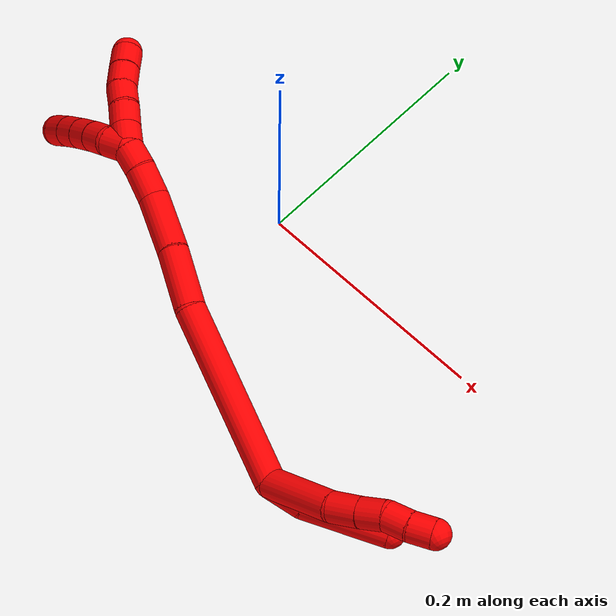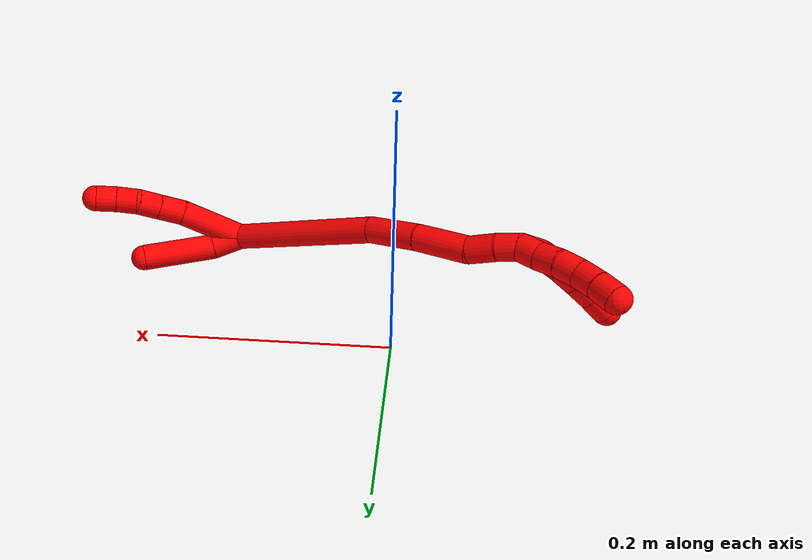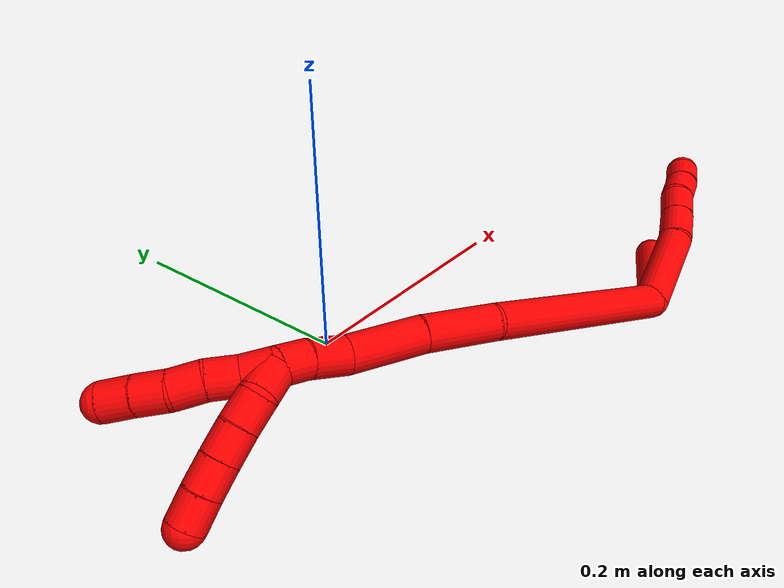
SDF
<sdf version="1.7">
 <world name="default">
  <model name="2">
   <static>0</static>
   <link name="2">
    <collision name="collision-cylinder-e_1_2_8">
     <pose>0.007558 0.021174 0.021791 -0.771047 0.243807 -0.099356</pose>
     <geometry><cylinder><radius>0.0125</radius><length>0.062621</length></cylinder></geometry>
     <surface>
      <friction><ode><mu>1.16</mu><mu2>1.16</mu2><slip1>0</slip1><slip2>0</slip2></ode></friction>
      <contact><ode><kp>1e+06</kp><kd>1</kd><max_vel>0</max_vel><min_depth>0.001</min_depth></ode></contact>
     </surface>
    </collision>
    <visual name="visual-cylinder-e_1_2_8">
     <pose>0.007558 0.021174 0.021791 -0.771047 0.243807 -0.099356</pose>
     <geometry><cylinder><radius>0.0125</radius><length>0.062621</length></cylinder></geometry>
     <material><ambient>1 0 0 1</ambient></material>
    </visual>
    <collision name="collision-cylinder-e_2_8_9">
     <pose>0.020977 0.050317 0.05139 -0.795541 0.483701 -0.206555</pose>
     <geometry><cylinder><radius>0.0125</radius><length>0.025202</length></cylinder></geometry>
     <surface>
      <friction><ode><mu>1.16</mu><mu2>1.16</mu2><slip1>0</slip1><slip2>0</slip2></ode></friction>
      <contact><ode><kp>1e+06</kp><kd>1</kd><max_vel>0</max_vel><min_depth>0.001</min_depth></ode></contact>
     </surface>
    </collision>
    <visual name="visual-cylinder-e_2_8_9">
     <pose>0.020977 0.050317 0.05139 -0.795541 0.483701 -0.206555</pose>
     <geometry><cylinder><radius>0.0125</radius><length>0.025202</length></cylinder></geometry>
     <material><ambient>1 0 0 1</ambient></material>
    </visual>
    <collision name="collision-cylinder-e_3_9_10">
     <pose>0.032195 0.065336 0.065423 -0.847519 0.51781 -0.237814</pose>
     <geometry><cylinder><radius>0.0125</radius><length>0.021651</length></cylinder></geometry>
     <surface>
      <friction><ode><mu>1.16</mu><mu2>1.16</mu2><slip1>0</slip1><slip2>0</slip2></ode></friction>
      <contact><ode><kp>1e+06</kp><kd>1</kd><max_vel>0</max_vel><min_depth>0.001</min_depth></ode></contact>
     </surface>
    </collision>
    <visual name="visual-cylinder-e_3_9_10">
     <pose>0.032195 0.065336 0.065423 -0.847519 0.51781 -0.237814</pose>
     <geometry><cylinder><radius>0.0125</radius><length>0.021651</length></cylinder></geometry>
     <material><ambient>1 0 0 1</ambient></material>
    </visual>
    <collision name="collision-cylinder-e_4_10_11">
     <pose>0.041832 0.077159 0.079662 -0.53716 0.430055 -0.120078</pose>
     <geometry><cylinder><radius>0.0125</radius><length>0.020522</length></cylinder></geometry>
     <surface>
      <friction><ode><mu>1.16</mu><mu2>1.16</mu2><slip1>0</slip1><slip2>0</slip2></ode></friction>
      <contact><ode><kp>1e+06</kp><kd>1</kd><max_vel>0</max_vel><min_depth>0.001</min_depth></ode></contact>
     </surface>
    </collision>
    <visual name="visual-cylinder-e_4_10_11">
     <pose>0.041832 0.077159 0.079662 -0.53716 0.430055 -0.120078</pose>
     <geometry><cylinder><radius>0.0125</radius><length>0.020522</length></cylinder></geometry>
     <material><ambient>1 0 0 1</ambient></material>
    </visual>
    <collision name="collision-cylinder-e_5_11_6">
     <pose>0.051533 0.086536 0.094706 -0.579741 0.573081 -0.175321</pose>
     <geometry><cylinder><radius>0.0125</radius><length>0.020004</length></cylinder></geometry>
     <surface>
      <friction><ode><mu>1.16</mu><mu2>1.16</mu2><slip1>0</slip1><slip2>0</slip2></ode></friction>
      <contact><ode><kp>1e+06</kp><kd>1</kd><max_vel>0</max_vel><min_depth>0.001</min_depth></ode></contact>
     </surface>
    </collision>
    <visual name="visual-cylinder-e_5_11_6">
     <pose>0.051533 0.086536 0.094706 -0.579741 0.573081 -0.175321</pose>
     <geometry><cylinder><radius>0.0125</radius><length>0.020004</length></cylinder></geometry>
     <material><ambient>1 0 0 1</ambient></material>
    </visual>
    <collision name="collision-cylinder-e_1_2_12">
     <pose>0.008461 0.000301 0.012278 -0.024529 0.603243 -0.007632</pose>
     <geometry><cylinder><radius>0.0125</radius><length>0.029827</length></cylinder></geometry>
     <surface>
      <friction><ode><mu>1.16</mu><mu2>1.16</mu2><slip1>0</slip1><slip2>0</slip2></ode></friction>
      <contact><ode><kp>1e+06</kp><kd>1</kd><max_vel>0</max_vel><min_depth>0.001</min_depth></ode></contact>
     </surface>
    </collision>
    <visual name="visual-cylinder-e_1_2_12">
     <pose>0.008461 0.000301 0.012278 -0.024529 0.603243 -0.007632</pose>
     <geometry><cylinder><radius>0.0125</radius><length>0.029827</length></cylinder></geometry>
     <material><ambient>1 0 0 1</ambient></material>
    </visual>
    <collision name="collision-cylinder-e_2_12_5">
     <pose>0.03924 0.011013 0.049547 -0.394713 0.689427 -0.143344</pose>
     <geometry><cylinder><radius>0.0125</radius><length>0.070173</length></cylinder></geometry>
     <surface>
      <friction><ode><mu>1.16</mu><mu2>1.16</mu2><slip1>0</slip1><slip2>0</slip2></ode></friction>
      <contact><ode><kp>1e+06</kp><kd>1</kd><max_vel>0</max_vel><min_depth>0.001</min_depth></ode></contact>
     </surface>
    </collision>
    <visual name="visual-cylinder-e_2_12_5">
     <pose>0.03924 0.011013 0.049547 -0.394713 0.689427 -0.143344</pose>
     <geometry><cylinder><radius>0.0125</radius><length>0.070173</length></cylinder></geometry>
     <material><ambient>1 0 0 1</ambient></material>
    </visual>
    <collision name="collision-cylinder-e_1_2_13">
     <pose>0.002301 0.00079 -0.075456 -3.13112 0.030481 -2.47958</pose>
     <geometry><cylinder><radius>0.0125</radius><length>0.150991</length></cylinder></geometry>
     <surface>
      <friction><ode><mu>1.16</mu><mu2>1.16</mu2><slip1>0</slip1><slip2>0</slip2></ode></friction>
      <contact><ode><kp>1e+06</kp><kd>1</kd><max_vel>0</max_vel><min_depth>0.001</min_depth></ode></contact>
     </surface>
    </collision>
    <visual name="visual-cylinder-e_1_2_13">
     <pose>0.002301 0.00079 -0.075456 -3.13112 0.030481 -2.47958</pose>
     <geometry><cylinder><radius>0.0125</radius><length>0.150991</length></cylinder></geometry>
     <material><ambient>1 0 0 1</ambient></material>
    </visual>
    <collision name="collision-cylinder-e_2_13_14">
     <pose>0.010263 -0.000436 -0.175701 3.06041 0.223811 2.44795</pose>
     <geometry><cylinder><radius>0.0125</radius><length>0.051014</length></cylinder></geometry>
     <surface>
      <friction><ode><mu>1.16</mu><mu2>1.16</mu2><slip1>0</slip1><slip2>0</slip2></ode></friction>
      <contact><ode><kp>1e+06</kp><kd>1</kd><max_vel>0</max_vel><min_depth>0.001</min_depth></ode></contact>
     </surface>
    </collision>
    <visual name="visual-cylinder-e_2_13_14">
     <pose>0.010263 -0.000436 -0.175701 3.06041 0.223811 2.44795</pose>
     <geometry><cylinder><radius>0.0125</radius><length>0.051014</length></cylinder></geometry>
     <material><ambient>1 0 0 1</ambient></material>
    </visual>
    <collision name="collision-cylinder-e_3_14_15">
     <pose>0.021295 -0.006909 -0.225138 2.96273 0.211244 1.73748</pose>
     <geometry><cylinder><radius>0.0125</radius><length>0.051234</length></cylinder></geometry>
     <surface>
      <friction><ode><mu>1.16</mu><mu2>1.16</mu2><slip1>0</slip1><slip2>0</slip2></ode></friction>
      <contact><ode><kp>1e+06</kp><kd>1</kd><max_vel>0</max_vel><min_depth>0.001</min_depth></ode></contact>
     </surface>
    </collision>
    <visual name="visual-cylinder-e_3_14_15">
     <pose>0.021295 -0.006909 -0.225138 2.96273 0.211244 1.73748</pose>
     <geometry><cylinder><radius>0.0125</radius><length>0.051234</length></cylinder></geometry>
     <material><ambient>1 0 0 1</ambient></material>
    </visual>
    <collision name="collision-cylinder-e_4_15_16">
     <pose>0.026704 -0.010614 -0.262993 -3.08475 0.002803 -0.098529</pose>
     <geometry><cylinder><radius>0.0125</radius><length>0.026457</length></cylinder></geometry>
     <surface>
      <friction><ode><mu>1.16</mu><mu2>1.16</mu2><slip1>0</slip1><slip2>0</slip2></ode></friction>
      <contact><ode><kp>1e+06</kp><kd>1</kd><max_vel>0</max_vel><min_depth>0.001</min_depth></ode></contact>
     </surface>
    </collision>
    <visual name="visual-cylinder-e_4_15_16">
     <pose>0.026704 -0.010614 -0.262993 -3.08475 0.002803 -0.098529</pose>
     <geometry><cylinder><radius>0.0125</radius><length>0.026457</length></cylinder></geometry>
     <material><ambient>1 0 0 1</ambient></material>
    </visual>
    <collision name="collision-cylinder-e_5_16_1">
     <pose>0.026444 -0.010584 -0.286322 3.07043 -0.029247 -0.779589</pose>
     <geometry><cylinder><radius>0.0125</radius><length>0.020304</length></cylinder></geometry>
     <surface>
      <friction><ode><mu>1.16</mu><mu2>1.16</mu2><slip1>0</slip1><slip2>0</slip2></ode></friction>
      <contact><ode><kp>1e+06</kp><kd>1</kd><max_vel>0</max_vel><min_depth>0.001</min_depth></ode></contact>
     </surface>
    </collision>
    <visual name="visual-cylinder-e_5_16_1">
     <pose>0.026444 -0.010584 -0.286322 3.07043 -0.029247 -0.779589</pose>
     <geometry><cylinder><radius>0.0125</radius><length>0.020304</length></cylinder></geometry>
     <material><ambient>1 0 0 1</ambient></material>
    </visual>
    <collision name="collision-cylinder-e_1_1_17">
     <pose>0.030345 -0.013589 -0.305228 2.88722 0.433276 2.08891</pose>
     <geometry><cylinder><radius>0.0125</radius><length>0.02</length></cylinder></geometry>
     <surface>
      <friction><ode><mu>1.16</mu><mu2>1.16</mu2><slip1>0</slip1><slip2>0</slip2></ode></friction>
      <contact><ode><kp>1e+06</kp><kd>1</kd><max_vel>0</max_vel><min_depth>0.001</min_depth></ode></contact>
     </surface>
    </collision>
    <visual name="visual-cylinder-e_1_1_17">
     <pose>0.030345 -0.013589 -0.305228 2.88722 0.433276 2.08891</pose>
     <geometry><cylinder><radius>0.0125</radius><length>0.02</length></cylinder></geometry>
     <material><ambient>1 0 0 1</ambient></material>
    </visual>
    <collision name="collision-cylinder-e_2_17_18">
     <pose>0.038774 -0.016838 -0.323022 3.03489 0.436778 2.66932</pose>
     <geometry><cylinder><radius>0.0125</radius><length>0.02</length></cylinder></geometry>
     <surface>
      <friction><ode><mu>1.16</mu><mu2>1.16</mu2><slip1>0</slip1><slip2>0</slip2></ode></friction>
      <contact><ode><kp>1e+06</kp><kd>1</kd><max_vel>0</max_vel><min_depth>0.001</min_depth></ode></contact>
     </surface>
    </collision>
    <visual name="visual-cylinder-e_2_17_18">
     <pose>0.038774 -0.016838 -0.323022 3.03489 0.436778 2.66932</pose>
     <geometry><cylinder><radius>0.0125</radius><length>0.02</length></cylinder></geometry>
     <material><ambient>1 0 0 1</ambient></material>
    </visual>
    <collision name="collision-cylinder-e_3_18_19">
     <pose>0.047204 -0.020445 -0.340714 2.84622 0.433369 1.953</pose>
     <geometry><cylinder><radius>0.0125</radius><length>0.02</length></cylinder></geometry>
     <surface>
      <friction><ode><mu>1.16</mu><mu2>1.16</mu2><slip1>0</slip1><slip2>0</slip2></ode></friction>
      <contact><ode><kp>1e+06</kp><kd>1</kd><max_vel>0</max_vel><min_depth>0.001</min_depth></ode></contact>
     </surface>
    </collision>
    <visual name="visual-cylinder-e_3_18_19">
     <pose>0.047204 -0.020445 -0.340714 2.84622 0.433369 1.953</pose>
     <geometry><cylinder><radius>0.0125</radius><length>0.02</length></cylinder></geometry>
     <material><ambient>1 0 0 1</ambient></material>
    </visual>
    <collision name="collision-cylinder-e_4_19_20">
     <pose>0.057251 -0.02489 -0.357305 2.9174 0.624617 2.47066</pose>
     <geometry><cylinder><radius>0.0125</radius><length>0.02</length></cylinder></geometry>
     <surface>
      <friction><ode><mu>1.16</mu><mu2>1.16</mu2><slip1>0</slip1><slip2>0</slip2></ode></friction>
      <contact><ode><kp>1e+06</kp><kd>1</kd><max_vel>0</max_vel><min_depth>0.001</min_depth></ode></contact>
     </surface>
    </collision>
    <visual name="visual-cylinder-e_4_19_20">
     <pose>0.057251 -0.02489 -0.357305 2.9174 0.624617 2.47066</pose>
     <geometry><cylinder><radius>0.0125</radius><length>0.02</length></cylinder></geometry>
     <material><ambient>1 0 0 1</ambient></material>
    </visual>
    <collision name="collision-cylinder-e_5_20_4">
     <pose>0.069188 -0.029013 -0.3728 2.84483 0.654768 2.3123</pose>
     <geometry><cylinder><radius>0.0125</radius><length>0.02</length></cylinder></geometry>
     <surface>
      <friction><ode><mu>1.16</mu><mu2>1.16</mu2><slip1>0</slip1><slip2>0</slip2></ode></friction>
      <contact><ode><kp>1e+06</kp><kd>1</kd><max_vel>0</max_vel><min_depth>0.001</min_depth></ode></contact>
     </surface>
    </collision>
    <visual name="visual-cylinder-e_5_20_4">
     <pose>0.069188 -0.029013 -0.3728 2.84483 0.654768 2.3123</pose>
     <geometry><cylinder><radius>0.0125</radius><length>0.02</length></cylinder></geometry>
     <material><ambient>1 0 0 1</ambient></material>
    </visual>
    <collision name="collision-cylinder-e_1_1_21">
     <pose>0.022963 -0.017478 -0.303639 2.43255 -0.324038 -0.831639</pose>
     <geometry><cylinder><radius>0.0125</radius><length>0.02</length></cylinder></geometry>
     <surface>
      <friction><ode><mu>1.16</mu><mu2>1.16</mu2><slip1>0</slip1><slip2>0</slip2></ode></friction>
      <contact><ode><kp>1e+06</kp><kd>1</kd><max_vel>0</max_vel><min_depth>0.001</min_depth></ode></contact>
     </surface>
    </collision>
    <visual name="visual-cylinder-e_1_1_21">
     <pose>0.022963 -0.017478 -0.303639 2.43255 -0.324038 -0.831639</pose>
     <geometry><cylinder><radius>0.0125</radius><length>0.02</length></cylinder></geometry>
     <material><ambient>1 0 0 1</ambient></material>
    </visual>
    <collision name="collision-cylinder-e_2_21_22">
     <pose>0.019287 -0.03142 -0.31711 2.25017 -0.049187 -0.102881</pose>
     <geometry><cylinder><radius>0.0125</radius><length>0.02</length></cylinder></geometry>
     <surface>
      <friction><ode><mu>1.16</mu><mu2>1.16</mu2><slip1>0</slip1><slip2>0</slip2></ode></friction>
      <contact><ode><kp>1e+06</kp><kd>1</kd><max_vel>0</max_vel><min_depth>0.001</min_depth></ode></contact>
     </surface>
    </collision>
    <visual name="visual-cylinder-e_2_21_22">
     <pose>0.019287 -0.03142 -0.31711 2.25017 -0.049187 -0.102881</pose>
     <geometry><cylinder><radius>0.0125</radius><length>0.02</length></cylinder></geometry>
     <material><ambient>1 0 0 1</ambient></material>
    </visual>
    <collision name="collision-cylinder-e_3_22_23">
     <pose>0.018527 -0.047381 -0.329116 2.18135 -0.026822 -0.051498</pose>
     <geometry><cylinder><radius>0.0125</radius><length>0.02</length></cylinder></geometry>
     <surface>
      <friction><ode><mu>1.16</mu><mu2>1.16</mu2><slip1>0</slip1><slip2>0</slip2></ode></friction>
      <contact><ode><kp>1e+06</kp><kd>1</kd><max_vel>0</max_vel><min_depth>0.001</min_depth></ode></contact>
     </surface>
    </collision>
    <visual name="visual-cylinder-e_3_22_23">
     <pose>0.018527 -0.047381 -0.329116 2.18135 -0.026822 -0.051498</pose>
     <geometry><cylinder><radius>0.0125</radius><length>0.02</length></cylinder></geometry>
     <material><ambient>1 0 0 1</ambient></material>
    </visual>
    <collision name="collision-cylinder-e_4_23_24">
     <pose>0.01802 -0.06395 -0.3403 2.1477 -0.023938 -0.044132</pose>
     <geometry><cylinder><radius>0.0125</radius><length>0.02</length></cylinder></geometry>
     <surface>
      <friction><ode><mu>1.16</mu><mu2>1.16</mu2><slip1>0</slip1><slip2>0</slip2></ode></friction>
      <contact><ode><kp>1e+06</kp><kd>1</kd><max_vel>0</max_vel><min_depth>0.001</min_depth></ode></contact>
     </surface>
    </collision>
    <visual name="visual-cylinder-e_4_23_24">
     <pose>0.01802 -0.06395 -0.3403 2.1477 -0.023938 -0.044132</pose>
     <geometry><cylinder><radius>0.0125</radius><length>0.02</length></cylinder></geometry>
     <material><ambient>1 0 0 1</ambient></material>
    </visual>
    <collision name="collision-cylinder-e_5_24_3">
     <pose>0.017688 -0.081012 -0.350714 2.08991 -0.009262 -0.015959</pose>
     <geometry><cylinder><radius>0.0125</radius><length>0.02</length></cylinder></geometry>
     <surface>
      <friction><ode><mu>1.16</mu><mu2>1.16</mu2><slip1>0</slip1><slip2>0</slip2></ode></friction>
      <contact><ode><kp>1e+06</kp><kd>1</kd><max_vel>0</max_vel><min_depth>0.001</min_depth></ode></contact>
     </surface>
    </collision>
    <visual name="visual-cylinder-e_5_24_3">
     <pose>0.017688 -0.081012 -0.350714 2.08991 -0.009262 -0.015959</pose>
     <geometry><cylinder><radius>0.0125</radius><length>0.02</length></cylinder></geometry>
     <material><ambient>1 0 0 1</ambient></material>
    </visual>
    <collision name="collision-sphere-3">
     <pose>0.017595 -0.089694 -0.355675 0 -0 0</pose>
     <geometry><sphere><radius>0.0125</radius></sphere></geometry>
     <surface>
      <friction><ode><mu>1.16</mu><mu2>1.16</mu2><slip1>0</slip1><slip2>0</slip2></ode></friction>
      <contact><ode><kp>1e+06</kp><kd>1</kd><max_vel>0</max_vel><min_depth>0.001</min_depth></ode></contact>
     </surface>
    </collision>
    <visual name="visual-sphere-3">
     <pose>0.017595 -0.089694 -0.355675 0 -0 0</pose>
     <geometry><sphere><radius>0.0125</radius></sphere></geometry>
     <material><ambient>1 0 0 1</ambient></material>
    </visual>
    <collision name="collision-sphere-24">
     <pose>0.017781 -0.07233 -0.345753 0 -0 0</pose>
     <geometry><sphere><radius>0.0125</radius></sphere></geometry>
     <surface>
      <friction><ode><mu>1.16</mu><mu2>1.16</mu2><slip1>0</slip1><slip2>0</slip2></ode></friction>
      <contact><ode><kp>1e+06</kp><kd>1</kd><max_vel>0</max_vel><min_depth>0.001</min_depth></ode></contact>
     </surface>
    </collision>
    <visual name="visual-sphere-24">
     <pose>0.017781 -0.07233 -0.345753 0 -0 0</pose>
     <geometry><sphere><radius>0.0125</radius></sphere></geometry>
     <material><ambient>1 0 0 1</ambient></material>
    </visual>
    <collision name="collision-sphere-23">
     <pose>0.018259 -0.055571 -0.334847 0 -0 0</pose>
     <geometry><sphere><radius>0.0125</radius></sphere></geometry>
     <surface>
      <friction><ode><mu>1.16</mu><mu2>1.16</mu2><slip1>0</slip1><slip2>0</slip2></ode></friction>
      <contact><ode><kp>1e+06</kp><kd>1</kd><max_vel>0</max_vel><min_depth>0.001</min_depth></ode></contact>
     </surface>
    </collision>
    <visual name="visual-sphere-23">
     <pose>0.018259 -0.055571 -0.334847 0 -0 0</pose>
     <geometry><sphere><radius>0.0125</radius></sphere></geometry>
     <material><ambient>1 0 0 1</ambient></material>
    </visual>
    <collision name="collision-sphere-22">
     <pose>0.018796 -0.039191 -0.323385 0 -0 0</pose>
     <geometry><sphere><radius>0.0125</radius></sphere></geometry>
     <surface>
      <friction><ode><mu>1.16</mu><mu2>1.16</mu2><slip1>0</slip1><slip2>0</slip2></ode></friction>
      <contact><ode><kp>1e+06</kp><kd>1</kd><max_vel>0</max_vel><min_depth>0.001</min_depth></ode></contact>
     </surface>
    </collision>
    <visual name="visual-sphere-22">
     <pose>0.018796 -0.039191 -0.323385 0 -0 0</pose>
     <geometry><sphere><radius>0.0125</radius></sphere></geometry>
     <material><ambient>1 0 0 1</ambient></material>
    </visual>
    <collision name="collision-sphere-21">
     <pose>0.019779 -0.02365 -0.310834 0 -0 0</pose>
     <geometry><sphere><radius>0.0125</radius></sphere></geometry>
     <surface>
      <friction><ode><mu>1.16</mu><mu2>1.16</mu2><slip1>0</slip1><slip2>0</slip2></ode></friction>
      <contact><ode><kp>1e+06</kp><kd>1</kd><max_vel>0</max_vel><min_depth>0.001</min_depth></ode></contact>
     </surface>
    </collision>
    <visual name="visual-sphere-21">
     <pose>0.019779 -0.02365 -0.310834 0 -0 0</pose>
     <geometry><sphere><radius>0.0125</radius></sphere></geometry>
     <material><ambient>1 0 0 1</ambient></material>
    </visual>
    <collision name="collision-sphere-4">
     <pose>0.075278 -0.031333 -0.380385 0 -0 0</pose>
     <geometry><sphere><radius>0.0125</radius></sphere></geometry>
     <surface>
      <friction><ode><mu>1.16</mu><mu2>1.16</mu2><slip1>0</slip1><slip2>0</slip2></ode></friction>
      <contact><ode><kp>1e+06</kp><kd>1</kd><max_vel>0</max_vel><min_depth>0.001</min_depth></ode></contact>
     </surface>
    </collision>
    <visual name="visual-sphere-4">
     <pose>0.075278 -0.031333 -0.380385 0 -0 0</pose>
     <geometry><sphere><radius>0.0125</radius></sphere></geometry>
     <material><ambient>1 0 0 1</ambient></material>
    </visual>
    <collision name="collision-sphere-20">
     <pose>0.063099 -0.026694 -0.365214 0 -0 0</pose>
     <geometry><sphere><radius>0.0125</radius></sphere></geometry>
     <surface>
      <friction><ode><mu>1.16</mu><mu2>1.16</mu2><slip1>0</slip1><slip2>0</slip2></ode></friction>
      <contact><ode><kp>1e+06</kp><kd>1</kd><max_vel>0</max_vel><min_depth>0.001</min_depth></ode></contact>
     </surface>
    </collision>
    <visual name="visual-sphere-20">
     <pose>0.063099 -0.026694 -0.365214 0 -0 0</pose>
     <geometry><sphere><radius>0.0125</radius></sphere></geometry>
     <material><ambient>1 0 0 1</ambient></material>
    </visual>
    <collision name="collision-sphere-6">
     <pose>0.056957 0.09114 0.101737 0 -0 0</pose>
     <geometry><sphere><radius>0.0125</radius></sphere></geometry>
     <surface>
      <friction><ode><mu>1.16</mu><mu2>1.16</mu2><slip1>0</slip1><slip2>0</slip2></ode></friction>
      <contact><ode><kp>1e+06</kp><kd>1</kd><max_vel>0</max_vel><min_depth>0.001</min_depth></ode></contact>
     </surface>
    </collision>
    <visual name="visual-sphere-6">
     <pose>0.056957 0.09114 0.101737 0 -0 0</pose>
     <geometry><sphere><radius>0.0125</radius></sphere></geometry>
     <material><ambient>1 0 0 1</ambient></material>
    </visual>
    <collision name="collision-sphere-11">
     <pose>0.04611 0.081932 0.087675 0 -0 0</pose>
     <geometry><sphere><radius>0.0125</radius></sphere></geometry>
     <surface>
      <friction><ode><mu>1.16</mu><mu2>1.16</mu2><slip1>0</slip1><slip2>0</slip2></ode></friction>
      <contact><ode><kp>1e+06</kp><kd>1</kd><max_vel>0</max_vel><min_depth>0.001</min_depth></ode></contact>
     </surface>
    </collision>
    <visual name="visual-sphere-11">
     <pose>0.04611 0.081932 0.087675 0 -0 0</pose>
     <geometry><sphere><radius>0.0125</radius></sphere></geometry>
     <material><ambient>1 0 0 1</ambient></material>
    </visual>
    <collision name="collision-sphere-10">
     <pose>0.037554 0.072387 0.071648 0 -0 0</pose>
     <geometry><sphere><radius>0.0125</radius></sphere></geometry>
     <surface>
      <friction><ode><mu>1.16</mu><mu2>1.16</mu2><slip1>0</slip1><slip2>0</slip2></ode></friction>
      <contact><ode><kp>1e+06</kp><kd>1</kd><max_vel>0</max_vel><min_depth>0.001</min_depth></ode></contact>
     </surface>
    </collision>
    <visual name="visual-sphere-10">
     <pose>0.037554 0.072387 0.071648 0 -0 0</pose>
     <geometry><sphere><radius>0.0125</radius></sphere></geometry>
     <material><ambient>1 0 0 1</ambient></material>
    </visual>
    <collision name="collision-sphere-9">
     <pose>0.026837 0.058284 0.059198 0 -0 0</pose>
     <geometry><sphere><radius>0.0125</radius></sphere></geometry>
     <surface>
      <friction><ode><mu>1.16</mu><mu2>1.16</mu2><slip1>0</slip1><slip2>0</slip2></ode></friction>
      <contact><ode><kp>1e+06</kp><kd>1</kd><max_vel>0</max_vel><min_depth>0.001</min_depth></ode></contact>
     </surface>
    </collision>
    <visual name="visual-sphere-9">
     <pose>0.026837 0.058284 0.059198 0 -0 0</pose>
     <geometry><sphere><radius>0.0125</radius></sphere></geometry>
     <material><ambient>1 0 0 1</ambient></material>
    </visual>
    <collision name="collision-sphere-2">
     <geometry><sphere><radius>0.0125</radius></sphere></geometry>
     <surface>
      <friction><ode><mu>1.16</mu><mu2>1.16</mu2><slip1>0</slip1><slip2>0</slip2></ode></friction>
      <contact><ode><kp>1e+06</kp><kd>1</kd><max_vel>0</max_vel><min_depth>0.001</min_depth></ode></contact>
     </surface>
    </collision>
    <visual name="visual-sphere-2">
     <geometry><sphere><radius>0.0125</radius></sphere></geometry>
     <material><ambient>1 0 0 1</ambient></material>
    </visual>
    <collision name="collision-sphere-19">
     <pose>0.051403 -0.023087 -0.349397 0 -0 0</pose>
     <geometry><sphere><radius>0.0125</radius></sphere></geometry>
     <surface>
      <friction><ode><mu>1.16</mu><mu2>1.16</mu2><slip1>0</slip1><slip2>0</slip2></ode></friction>
      <contact><ode><kp>1e+06</kp><kd>1</kd><max_vel>0</max_vel><min_depth>0.001</min_depth></ode></contact>
     </surface>
    </collision>
    <visual name="visual-sphere-19">
     <pose>0.051403 -0.023087 -0.349397 0 -0 0</pose>
     <geometry><sphere><radius>0.0125</radius></sphere></geometry>
     <material><ambient>1 0 0 1</ambient></material>
    </visual>
    <collision name="collision-sphere-8">
     <pose>0.015117 0.042349 0.043582 0 -0 0</pose>
     <geometry><sphere><radius>0.0125</radius></sphere></geometry>
     <surface>
      <friction><ode><mu>1.16</mu><mu2>1.16</mu2><slip1>0</slip1><slip2>0</slip2></ode></friction>
      <contact><ode><kp>1e+06</kp><kd>1</kd><max_vel>0</max_vel><min_depth>0.001</min_depth></ode></contact>
     </surface>
    </collision>
    <visual name="visual-sphere-8">
     <pose>0.015117 0.042349 0.043582 0 -0 0</pose>
     <geometry><sphere><radius>0.0125</radius></sphere></geometry>
     <material><ambient>1 0 0 1</ambient></material>
    </visual>
    <collision name="collision-sphere-12">
     <pose>0.016921 0.000602 0.024555 0 -0 0</pose>
     <geometry><sphere><radius>0.0125</radius></sphere></geometry>
     <surface>
      <friction><ode><mu>1.16</mu><mu2>1.16</mu2><slip1>0</slip1><slip2>0</slip2></ode></friction>
      <contact><ode><kp>1e+06</kp><kd>1</kd><max_vel>0</max_vel><min_depth>0.001</min_depth></ode></contact>
     </surface>
    </collision>
    <visual name="visual-sphere-12">
     <pose>0.016921 0.000602 0.024555 0 -0 0</pose>
     <geometry><sphere><radius>0.0125</radius></sphere></geometry>
     <material><ambient>1 0 0 1</ambient></material>
    </visual>
    <collision name="collision-sphere-5">
     <pose>0.061558 0.021424 0.074538 0 -0 0</pose>
     <geometry><sphere><radius>0.0125</radius></sphere></geometry>
     <surface>
      <friction><ode><mu>1.16</mu><mu2>1.16</mu2><slip1>0</slip1><slip2>0</slip2></ode></friction>
      <contact><ode><kp>1e+06</kp><kd>1</kd><max_vel>0</max_vel><min_depth>0.001</min_depth></ode></contact>
     </surface>
    </collision>
    <visual name="visual-sphere-5">
     <pose>0.061558 0.021424 0.074538 0 -0 0</pose>
     <geometry><sphere><radius>0.0125</radius></sphere></geometry>
     <material><ambient>1 0 0 1</ambient></material>
    </visual>
    <collision name="collision-sphere-13">
     <pose>0.004602 0.001581 -0.150912 0 -0 0</pose>
     <geometry><sphere><radius>0.0125</radius></sphere></geometry>
     <surface>
      <friction><ode><mu>1.16</mu><mu2>1.16</mu2><slip1>0</slip1><slip2>0</slip2></ode></friction>
      <contact><ode><kp>1e+06</kp><kd>1</kd><max_vel>0</max_vel><min_depth>0.001</min_depth></ode></contact>
     </surface>
    </collision>
    <visual name="visual-sphere-13">
     <pose>0.004602 0.001581 -0.150912 0 -0 0</pose>
     <geometry><sphere><radius>0.0125</radius></sphere></geometry>
     <material><ambient>1 0 0 1</ambient></material>
    </visual>
    <collision name="collision-sphere-14">
     <pose>0.015924 -0.002453 -0.20049 0 -0 0</pose>
     <geometry><sphere><radius>0.0125</radius></sphere></geometry>
     <surface>
      <friction><ode><mu>1.16</mu><mu2>1.16</mu2><slip1>0</slip1><slip2>0</slip2></ode></friction>
      <contact><ode><kp>1e+06</kp><kd>1</kd><max_vel>0</max_vel><min_depth>0.001</min_depth></ode></contact>
     </surface>
    </collision>
    <visual name="visual-sphere-14">
     <pose>0.015924 -0.002453 -0.20049 0 -0 0</pose>
     <geometry><sphere><radius>0.0125</radius></sphere></geometry>
     <material><ambient>1 0 0 1</ambient></material>
    </visual>
    <collision name="collision-sphere-15">
     <pose>0.026667 -0.011365 -0.249786 0 -0 0</pose>
     <geometry><sphere><radius>0.0125</radius></sphere></geometry>
     <surface>
      <friction><ode><mu>1.16</mu><mu2>1.16</mu2><slip1>0</slip1><slip2>0</slip2></ode></friction>
      <contact><ode><kp>1e+06</kp><kd>1</kd><max_vel>0</max_vel><min_depth>0.001</min_depth></ode></contact>
     </surface>
    </collision>
    <visual name="visual-sphere-15">
     <pose>0.026667 -0.011365 -0.249786 0 -0 0</pose>
     <geometry><sphere><radius>0.0125</radius></sphere></geometry>
     <material><ambient>1 0 0 1</ambient></material>
    </visual>
    <collision name="collision-sphere-16">
     <pose>0.026741 -0.009862 -0.276201 0 -0 0</pose>
     <geometry><sphere><radius>0.0125</radius></sphere></geometry>
     <surface>
      <friction><ode><mu>1.16</mu><mu2>1.16</mu2><slip1>0</slip1><slip2>0</slip2></ode></friction>
      <contact><ode><kp>1e+06</kp><kd>1</kd><max_vel>0</max_vel><min_depth>0.001</min_depth></ode></contact>
     </surface>
    </collision>
    <visual name="visual-sphere-16">
     <pose>0.026741 -0.009862 -0.276201 0 -0 0</pose>
     <geometry><sphere><radius>0.0125</radius></sphere></geometry>
     <material><ambient>1 0 0 1</ambient></material>
    </visual>
    <collision name="collision-sphere-1">
     <pose>0.026147 -0.011306 -0.296444 0 -0 0</pose>
     <geometry><sphere><radius>0.0125</radius></sphere></geometry>
     <surface>
      <friction><ode><mu>1.16</mu><mu2>1.16</mu2><slip1>0</slip1><slip2>0</slip2></ode></friction>
      <contact><ode><kp>1e+06</kp><kd>1</kd><max_vel>0</max_vel><min_depth>0.001</min_depth></ode></contact>
     </surface>
    </collision>
    <visual name="visual-sphere-1">
     <pose>0.026147 -0.011306 -0.296444 0 -0 0</pose>
     <geometry><sphere><radius>0.0125</radius></sphere></geometry>
     <material><ambient>1 0 0 1</ambient></material>
    </visual>
    <collision name="collision-sphere-18">
     <pose>0.043004 -0.017803 -0.332032 0 -0 0</pose>
     <geometry><sphere><radius>0.0125</radius></sphere></geometry>
     <surface>
      <friction><ode><mu>1.16</mu><mu2>1.16</mu2><slip1>0</slip1><slip2>0</slip2></ode></friction>
      <contact><ode><kp>1e+06</kp><kd>1</kd><max_vel>0</max_vel><min_depth>0.001</min_depth></ode></contact>
     </surface>
    </collision>
    <visual name="visual-sphere-18">
     <pose>0.043004 -0.017803 -0.332032 0 -0 0</pose>
     <geometry><sphere><radius>0.0125</radius></sphere></geometry>
     <material><ambient>1 0 0 1</ambient></material>
    </visual>
    <collision name="collision-sphere-17">
     <pose>0.034544 -0.015873 -0.314012 0 -0 0</pose>
     <geometry><sphere><radius>0.0125</radius></sphere></geometry>
     <surface>
      <friction><ode><mu>1.16</mu><mu2>1.16</mu2><slip1>0</slip1><slip2>0</slip2></ode></friction>
      <contact><ode><kp>1e+06</kp><kd>1</kd><max_vel>0</max_vel><min_depth>0.001</min_depth></ode></contact>
     </surface>
    </collision>
    <visual name="visual-sphere-17">
     <pose>0.034544 -0.015873 -0.314012 0 -0 0</pose>
     <geometry><sphere><radius>0.0125</radius></sphere></geometry>
     <material><ambient>1 0 0 1</ambient></material>
    </visual>
    <inertial>
     <pose>0.022113 0.000576 -0.133351 0 -0 0</pose>
     <mass>0.75</mass>
     <inertia>
      <ixx>-0.000331</ixx>
      <ixy>0</ixy>
      <ixz>0</ixz>
      <iyy>0.000133</iyy>
      <iyz>0</iyz>
      <izz>-9e-05</izz>
     </inertia>
    </inertial>
   </link>
   <pose>0.165113 -0.178846 0.024598 1.79412 0.272035 1.30279</pose>
  </model>
 </world>
</sdf>
